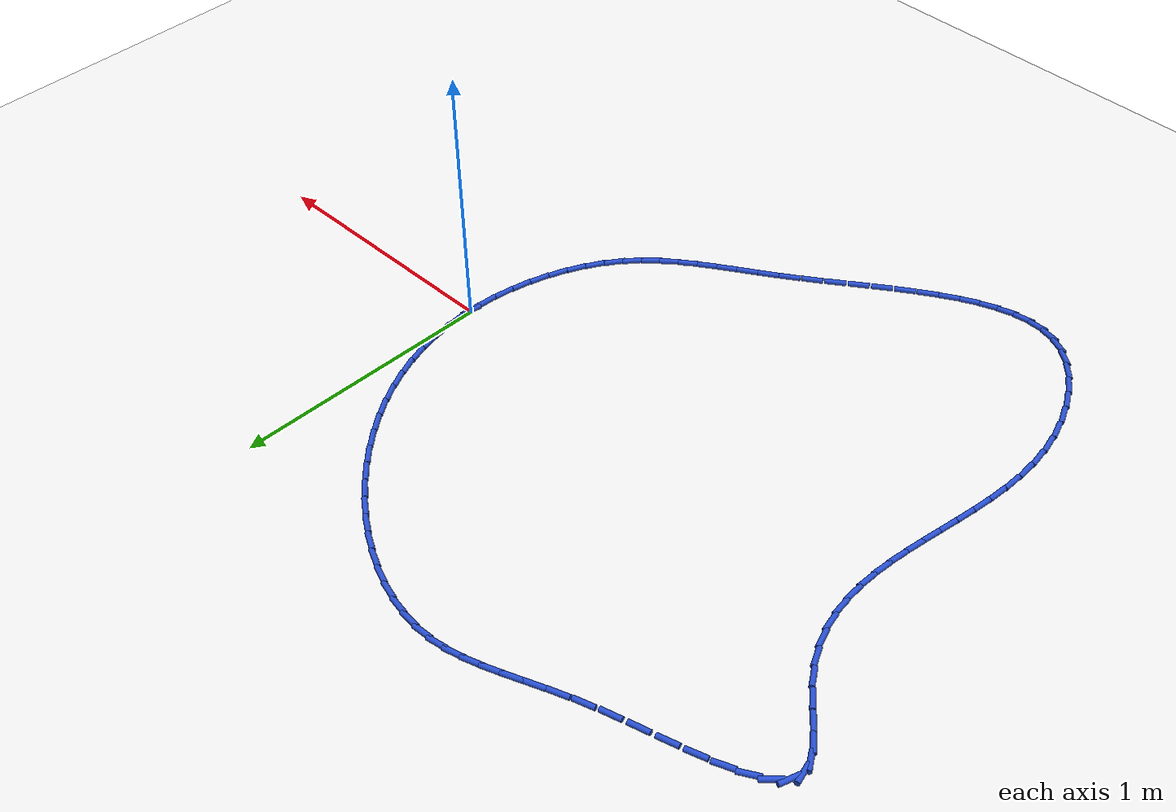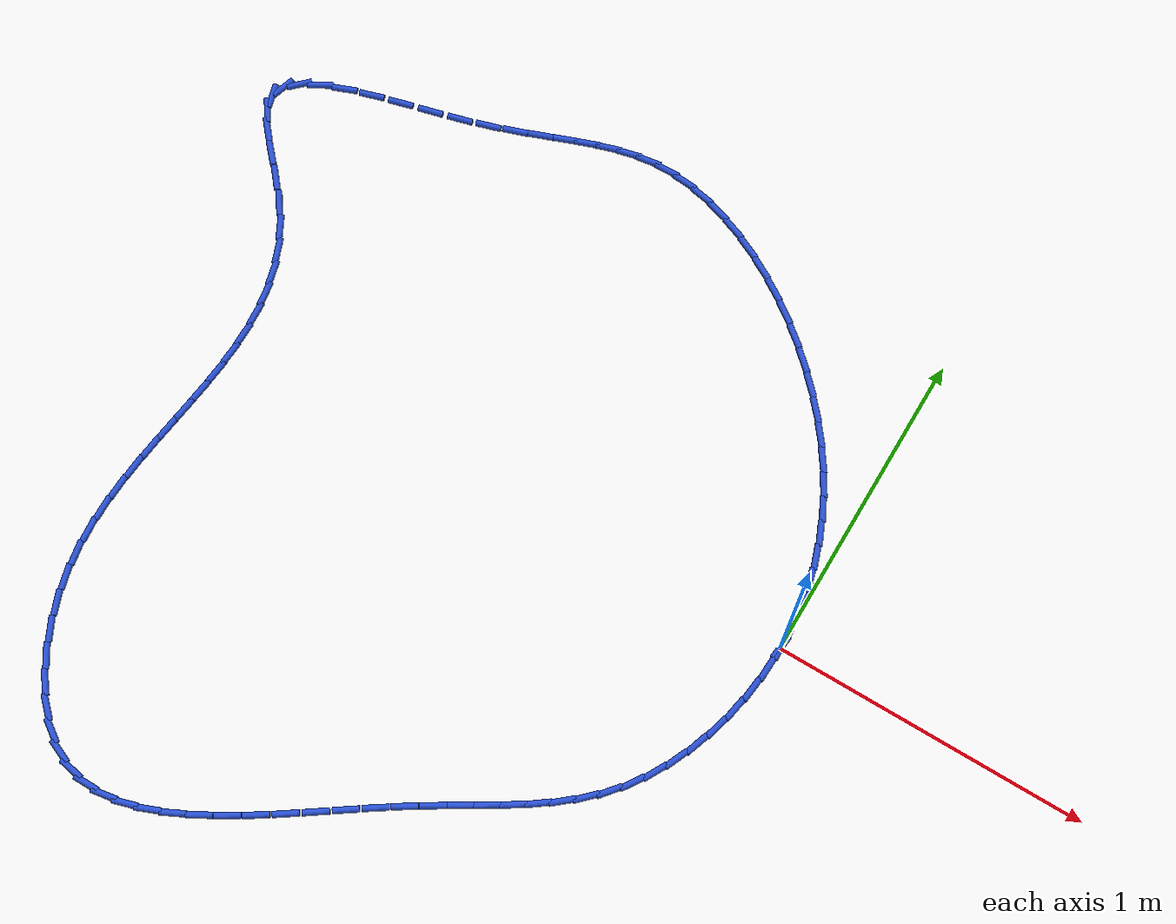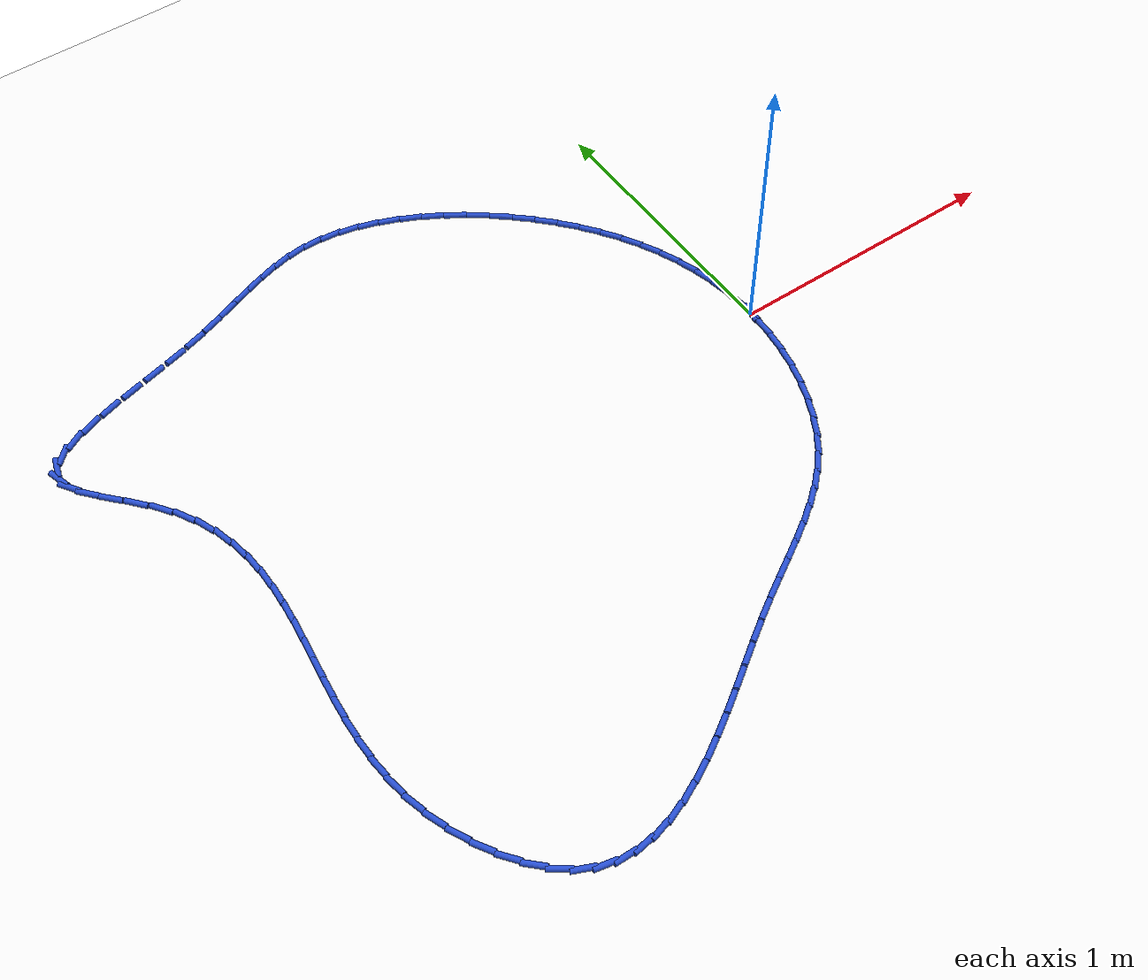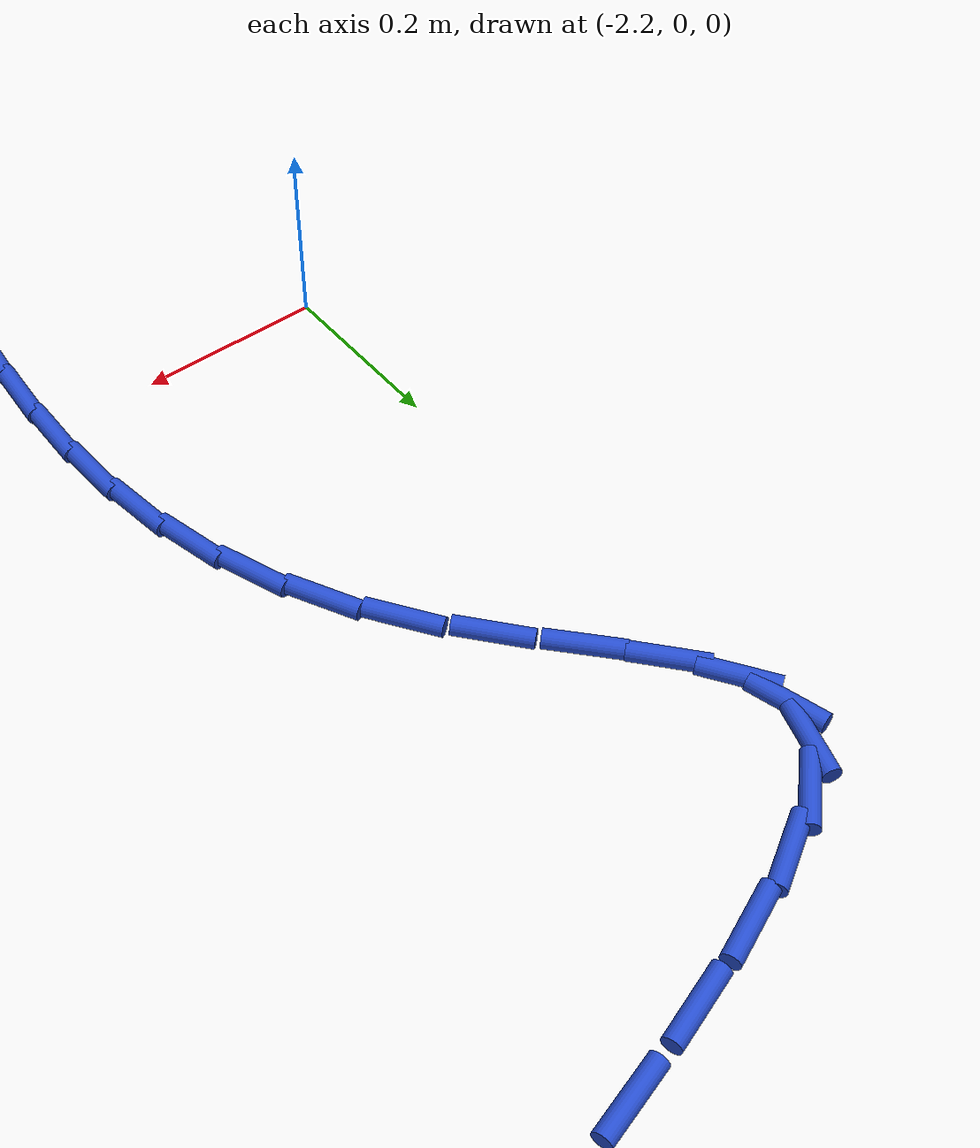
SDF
<sdf version="1.6">
 <world name="default">
  <light name="sun" type="directional">
   <pose>0 0 10 0 -0 0</pose>
   <diffuse>0.8 0.8 0.8 1</diffuse>
   <specular>0.2 0.2 0.2 1</specular>
   <attenuation>
    <range>1000</range>
    <constant>0.9</constant>
    <linear>0.01</linear>
    <quadratic>0.001</quadratic>
   </attenuation>
   <direction>-0.5 0.1 -0.9</direction>
  </light>
  <model name="ground_plane">
   <static>1</static>
   <link name="link">
    <collision name="collision">
     <geometry><plane><normal>0 0 1</normal><size>100 100</size></plane></geometry>
     <surface><friction><ode><mu>100</mu><mu2>50</mu2></ode></friction></surface>
    </collision>
    <visual name="visual">
     <cast_shadows>0</cast_shadows>
     <geometry><plane><normal>0 0 1</normal><size>100 100</size></plane></geometry>
     <material>
      <script><uri>file://media/materials/scripts/gazebo.material</uri><name>Gazebo/WhiteGlow</name></script>
     </material>
    </visual>
   </link>
  </model>
  <gravity>0 0 -9.8</gravity>
  <magnetic_field>6e-06 2.3e-05 -4.2e-05</magnetic_field>
  <atmosphere type="adiabatic"/>
  <physics name="default_physics" default="0" type="ode">
   <max_step_size>0.001</max_step_size>
   <real_time_factor>1</real_time_factor>
   <real_time_update_rate>1000</real_time_update_rate>
  </physics>
  <scene><ambient>0.4 0.4 0.4 1</ambient><background>0.7 0.7 0.7 1</background><shadows>1</shadows></scene>
  <spherical_coordinates>
   <surface_model>EARTH_WGS84</surface_model>
   <latitude_deg>0</latitude_deg>
   <longitude_deg>0</longitude_deg>
   <elevation>0</elevation>
   <heading_deg>0</heading_deg>
  </spherical_coordinates>
  <model name="line">
   <link name="link_0">
    <pose>1.1449174941446927e-16 -1.249000902703301e-16 0.01 0 1.57 -1.5332097352017506</pose>
    <collision name="collision">
     <geometry><cylinder><radius>0.01</radius><length>0.08</length></cylinder></geometry>
    </collision>
    <visual name="visual">
     <material>
      <script><name>Gazebo/Blue</name><uri>file://media/materials/scripts/gazebo.material</uri></script>
     </material>
     <geometry><cylinder><radius>0.01</radius><length>0.08</length></cylinder></geometry>
    </visual>
   </link>
   <link name="link_1">
    <pose>-0.0028008554683580373 0.07448231547981228 0.01 0 1.57 -1.457211328242579</pose>
    <collision name="collision">
     <geometry><cylinder><radius>0.01</radius><length>0.08</length></cylinder></geometry>
    </collision>
    <visual name="visual">
     <material>
      <script><name>Gazebo/Blue</name><uri>file://media/materials/scripts/gazebo.material</uri></script>
     </material>
     <geometry><cylinder><radius>0.01</radius><length>0.08</length></cylinder></geometry>
    </visual>
   </link>
   <link name="link_2">
    <pose>-0.01116715512982944 0.14782201145313623 0.01 0 1.57 -1.3812983999891548</pose>
    <collision name="collision">
     <geometry><cylinder><radius>0.01</radius><length>0.08</length></cylinder></geometry>
    </collision>
    <visual name="visual">
     <material>
      <script><name>Gazebo/Blue</name><uri>file://media/materials/scripts/gazebo.material</uri></script>
     </material>
     <geometry><cylinder><radius>0.01</radius><length>0.08</length></cylinder></geometry>
    </visual>
   </link>
   <link name="link_3">
    <pose>-0.025004623859311938 0.21996759664344118 0.01 0 1.57 -1.3061465344879544</pose>
    <collision name="collision">
     <geometry><cylinder><radius>0.01</radius><length>0.08</length></cylinder></geometry>
    </collision>
    <visual name="visual">
     <material>
      <script><name>Gazebo/Blue</name><uri>file://media/materials/scripts/gazebo.material</uri></script>
     </material>
     <geometry><cylinder><radius>0.01</radius><length>0.08</length></cylinder></geometry>
    </visual>
   </link>
   <link name="link_4">
    <pose>-0.04421898653170336 0.2908675797741967 0.01 0 1.57 -1.2323822463100993</pose>
    <collision name="collision">
     <geometry><cylinder><radius>0.01</radius><length>0.08</length></cylinder></geometry>
    </collision>
    <visual name="visual">
     <material>
      <script><name>Gazebo/Blue</name><uri>file://media/materials/scripts/gazebo.material</uri></script>
     </material>
     <geometry><cylinder><radius>0.01</radius><length>0.08</length></cylinder></geometry>
    </visual>
   </link>
   <link name="link_5">
    <pose>-0.06871596802190158 0.3604704695688723 0.01 0 1.57 -1.1605514381106135</pose>
    <collision name="collision">
     <geometry><cylinder><radius>0.01</radius><length>0.08</length></cylinder></geometry>
    </collision>
    <visual name="visual">
     <material>
      <script><name>Gazebo/Blue</name><uri>file://media/materials/scripts/gazebo.material</uri></script>
     </material>
     <geometry><cylinder><radius>0.01</radius><length>0.08</length></cylinder></geometry>
    </visual>
   </link>
   <link name="link_6">
    <pose>-0.09840129320480442 0.4287247747509374 0.01 0 1.57 -1.0910981484713185</pose>
    <collision name="collision">
     <geometry><cylinder><radius>0.01</radius><length>0.08</length></cylinder></geometry>
    </collision>
    <visual name="visual">
     <material>
      <script><name>Gazebo/Blue</name><uri>file://media/materials/scripts/gazebo.material</uri></script>
     </material>
     <geometry><cylinder><radius>0.01</radius><length>0.08</length></cylinder></geometry>
    </visual>
   </link>
   <link name="link_7">
    <pose>-0.13318068695530982 0.4955790040438619 0.01 0 1.57 -1.0243548441370665</pose>
    <collision name="collision">
     <geometry><cylinder><radius>0.01</radius><length>0.08</length></cylinder></geometry>
    </collision>
    <visual name="visual">
     <material>
      <script><name>Gazebo/Blue</name><uri>file://media/materials/scripts/gazebo.material</uri></script>
     </material>
     <geometry><cylinder><radius>0.01</radius><length>0.08</length></cylinder></geometry>
    </visual>
   </link>
   <link name="link_8">
    <pose>-0.17295987414831548 0.560981666171115 0.01 0 1.57 -0.9605786005803079</pose>
    <collision name="collision">
     <geometry><cylinder><radius>0.01</radius><length>0.08</length></cylinder></geometry>
    </collision>
    <visual name="visual">
     <material>
      <script><name>Gazebo/Blue</name><uri>file://media/materials/scripts/gazebo.material</uri></script>
     </material>
     <geometry><cylinder><radius>0.01</radius><length>0.08</length></cylinder></geometry>
    </visual>
   </link>
   <link name="link_9">
    <pose>-0.21763190158667053 0.6248679371783384 0.01 0 1.57 -0.9001767176270008</pose>
    <collision name="collision">
     <geometry><cylinder><radius>0.01</radius><length>0.08</length></cylinder></geometry>
    </collision>
    <visual name="visual">
     <material>
      <script><name>Gazebo/Blue</name><uri>file://media/materials/scripts/gazebo.material</uri></script>
     </material>
     <geometry><cylinder><radius>0.01</radius><length>0.08</length></cylinder></geometry>
    </visual>
   </link>
   <link name="link_10">
    <pose>-0.26688709217391204 0.6869598019865958 0.01 0 1.57 -0.8425933637744383</pose>
    <collision name="collision">
     <geometry><cylinder><radius>0.01</radius><length>0.08</length></cylinder></geometry>
    </collision>
    <visual name="visual">
     <material>
      <script><name>Gazebo/Blue</name><uri>file://media/materials/scripts/gazebo.material</uri></script>
     </material>
     <geometry><cylinder><radius>0.01</radius><length>0.08</length></cylinder></geometry>
    </visual>
   </link>
   <link name="link_11">
    <pose>-0.3202527710371423 0.7468078316906595 0.01 0 1.57 -0.7867213057191228</pose>
    <collision name="collision">
     <geometry><cylinder><radius>0.01</radius><length>0.08</length></cylinder></geometry>
    </collision>
    <visual name="visual">
     <material>
      <script><name>Gazebo/Blue</name><uri>file://media/materials/scripts/gazebo.material</uri></script>
     </material>
     <geometry><cylinder><radius>0.01</radius><length>0.08</length></cylinder></geometry>
    </visual>
   </link>
   <link name="link_12">
    <pose>-0.377251649127175 0.8039577449656546 0.01 0 1.57 -0.7315112809881077</pose>
    <collision name="collision">
     <geometry><cylinder><radius>0.01</radius><length>0.08</length></cylinder></geometry>
    </collision>
    <visual name="visual">
     <material>
      <script><name>Gazebo/Blue</name><uri>file://media/materials/scripts/gazebo.material</uri></script>
     </material>
     <geometry><cylinder><radius>0.01</radius><length>0.08</length></cylinder></geometry>
    </visual>
   </link>
   <link name="link_13">
    <pose>-0.43740643739482377 0.857955260486706 0.01 0 1.57 -0.6759441761925137</pose>
    <collision name="collision">
     <geometry><cylinder><radius>0.01</radius><length>0.08</length></cylinder></geometry>
    </collision>
    <visual name="visual">
     <material>
      <script><name>Gazebo/Blue</name><uri>file://media/materials/scripts/gazebo.material</uri></script>
     </material>
     <geometry><cylinder><radius>0.01</radius><length>0.08</length></cylinder></geometry>
    </visual>
   </link>
   <link name="link_14">
    <pose>-0.5002398467909022 0.9083460969289389 0.01 0 1.57 -0.6189908107730885</pose>
    <collision name="collision">
     <geometry><cylinder><radius>0.01</radius><length>0.08</length></cylinder></geometry>
    </collision>
    <visual name="visual">
     <material>
      <script><name>Gazebo/Blue</name><uri>file://media/materials/scripts/gazebo.material</uri></script>
     </material>
     <geometry><cylinder><radius>0.01</radius><length>0.08</length></cylinder></geometry>
    </visual>
   </link>
   <link name="link_15">
    <pose>-0.5652745882662236 0.9546759729674777 0.01 0 1.57 -0.559572413776925</pose>
    <collision name="collision">
     <geometry><cylinder><radius>0.01</radius><length>0.08</length></cylinder></geometry>
    </collision>
    <visual name="visual">
     <material>
      <script><name>Gazebo/Blue</name><uri>file://media/materials/scripts/gazebo.material</uri></script>
     </material>
     <geometry><cylinder><radius>0.01</radius><length>0.08</length></cylinder></geometry>
    </visual>
   </link>
   <link name="link_16">
    <pose>-0.6320333727716019 0.9964906072774482 0.01 0 1.57 -0.4965225439888283</pose>
    <collision name="collision">
     <geometry><cylinder><radius>0.01</radius><length>0.08</length></cylinder></geometry>
    </collision>
    <visual name="visual">
     <material>
      <script><name>Gazebo/Blue</name><uri>file://media/materials/scripts/gazebo.material</uri></script>
     </material>
     <geometry><cylinder><radius>0.01</radius><length>0.08</length></cylinder></geometry>
    </visual>
   </link>
   <link name="link_17">
    <pose>-0.7000389112578506 1.033335718533975 0.01 0 1.57 -0.4285531669431859</pose>
    <collision name="collision">
     <geometry><cylinder><radius>0.01</radius><length>0.08</length></cylinder></geometry>
    </collision>
    <visual name="visual">
     <material>
      <script><name>Gazebo/Blue</name><uri>file://media/materials/scripts/gazebo.material</uri></script>
     </material>
     <geometry><cylinder><radius>0.01</radius><length>0.08</length></cylinder></geometry>
    </visual>
   </link>
   <link name="link_18">
    <pose>-0.7688139146757832 1.0647570254121834 0.01 0 1.57 -0.354231734749155</pose>
    <collision name="collision">
     <geometry><cylinder><radius>0.01</radius><length>0.08</length></cylinder></geometry>
    </collision>
    <visual name="visual">
     <material>
      <script><name>Gazebo/Blue</name><uri>file://media/materials/scripts/gazebo.material</uri></script>
     </material>
     <geometry><cylinder><radius>0.01</radius><length>0.08</length></cylinder></geometry>
    </visual>
   </link>
   <link name="link_19">
    <pose>-0.8378810939762137 1.090300246587198 0.01 0 1.57 -0.27198361271759963</pose>
    <collision name="collision">
     <geometry><cylinder><radius>0.01</radius><length>0.08</length></cylinder></geometry>
    </collision>
    <visual name="visual">
     <material>
      <script><name>Gazebo/Blue</name><uri>file://media/materials/scripts/gazebo.material</uri></script>
     </material>
     <geometry><cylinder><radius>0.01</radius><length>0.08</length></cylinder></geometry>
    </visual>
   </link>
   <link name="link_20">
    <pose>-0.9067631601099553 1.1095111007341443 0.01 0 1.57 -0.18014622031427321</pose>
    <collision name="collision">
     <geometry><cylinder><radius>0.01</radius><length>0.08</length></cylinder></geometry>
    </collision>
    <visual name="visual">
     <material>
      <script><name>Gazebo/Blue</name><uri>file://media/materials/scripts/gazebo.material</uri></script>
     </material>
     <geometry><cylinder><radius>0.01</radius><length>0.08</length></cylinder></geometry>
    </visual>
   </link>
   <link name="link_21">
    <pose>-0.9749828240278211 1.1219353065281465 0.01 0 1.57 -0.07711686270004234</pose>
    <collision name="collision">
     <geometry><cylinder><radius>0.01</radius><length>0.08</length></cylinder></geometry>
    </collision>
    <visual name="visual">
     <material>
      <script><name>Gazebo/Blue</name><uri>file://media/materials/scripts/gazebo.material</uri></script>
     </material>
     <geometry><cylinder><radius>0.01</radius><length>0.08</length></cylinder></geometry>
    </visual>
   </link>
   <link name="link_22">
    <pose>-1.042062796680626 1.1271185826443304 0.01 0 1.57 0.03798395442139232</pose>
    <collision name="collision">
     <geometry><cylinder><radius>0.01</radius><length>0.08</length></cylinder></geometry>
    </collision>
    <visual name="visual">
     <material>
      <script><name>Gazebo/Blue</name><uri>file://media/materials/scripts/gazebo.material</uri></script>
     </material>
     <geometry><cylinder><radius>0.01</radius><length>0.08</length></cylinder></geometry>
    </visual>
   </link>
   <link name="link_23">
    <pose>-1.1075482028244734 1.124629991016228 0.01 0 1.57 0.15213571557484942</pose>
    <collision name="collision">
     <geometry><cylinder><radius>0.01</radius><length>0.08</length></cylinder></geometry>
    </collision>
    <visual name="visual">
     <material>
      <script><name>Gazebo/Blue</name><uri>file://media/materials/scripts/gazebo.material</uri></script>
     </material>
     <geometry><cylinder><radius>0.01</radius><length>0.08</length></cylinder></geometry>
    </visual>
   </link>
   <link name="link_24">
    <pose>-1.1717084531378448 1.1147929141056154 0.01 0 1.57 0.2445467233912756</pose>
    <collision name="collision">
     <geometry><cylinder><radius>0.01</radius><length>0.08</length></cylinder></geometry>
    </collision>
    <visual name="visual">
     <material>
      <script><name>Gazebo/Blue</name><uri>file://media/materials/scripts/gazebo.material</uri></script>
     </material>
     <geometry><cylinder><radius>0.01</radius><length>0.08</length></cylinder></geometry>
    </visual>
   </link>
   <link name="link_25">
    <pose>-1.2356766325599284 1.0988302233805285 0.01 0 1.57 0.3100611129486098</pose>
    <collision name="collision">
     <geometry><cylinder><radius>0.01</radius><length>0.08</length></cylinder></geometry>
    </collision>
    <visual name="visual">
     <material>
      <script><name>Gazebo/Blue</name><uri>file://media/materials/scripts/gazebo.material</uri></script>
     </material>
     <geometry><cylinder><radius>0.01</radius><length>0.08</length></cylinder></geometry>
    </visual>
   </link>
   <link name="link_26">
    <pose>-1.3006363885114278 1.0780174495097241 0.01 0 1.57 0.3484368906860273</pose>
    <collision name="collision">
     <geometry><cylinder><radius>0.01</radius><length>0.08</length></cylinder></geometry>
    </collision>
    <visual name="visual">
     <material>
      <script><name>Gazebo/Blue</name><uri>file://media/materials/scripts/gazebo.material</uri></script>
     </material>
     <geometry><cylinder><radius>0.01</radius><length>0.08</length></cylinder></geometry>
    </visual>
   </link>
   <link name="link_27">
    <pose>-1.3677713684130441 1.0536301231619571 0.01 0 1.57 0.36189053698840795</pose>
    <collision name="collision">
     <geometry><cylinder><radius>0.01</radius><length>0.08</length></cylinder></geometry>
    </collision>
    <visual name="visual">
     <material>
      <script><name>Gazebo/Blue</name><uri>file://media/materials/scripts/gazebo.material</uri></script>
     </material>
     <geometry><cylinder><radius>0.01</radius><length>0.08</length></cylinder></geometry>
    </visual>
   </link>
   <link name="link_28">
    <pose>-1.4382652196854806 1.0269437750059842 0.01 0 1.57 0.3537512610958807</pose>
    <collision name="collision">
     <geometry><cylinder><radius>0.01</radius><length>0.08</length></cylinder></geometry>
    </collision>
    <visual name="visual">
     <material>
      <script><name>Gazebo/Blue</name><uri>file://media/materials/scripts/gazebo.material</uri></script>
     </material>
     <geometry><cylinder><radius>0.01</radius><length>0.08</length></cylinder></geometry>
    </visual>
   </link>
   <link name="link_29">
    <pose>-1.5133015897494393 0.9992339357105611 0.01 0 1.57 0.3277222737373112</pose>
    <collision name="collision">
     <geometry><cylinder><radius>0.01</radius><length>0.08</length></cylinder></geometry>
    </collision>
    <visual name="visual">
     <material>
      <script><name>Gazebo/Blue</name><uri>file://media/materials/scripts/gazebo.material</uri></script>
     </material>
     <geometry><cylinder><radius>0.01</radius><length>0.08</length></cylinder></geometry>
    </visual>
   </link>
   <link name="link_30">
    <pose>-1.5940641260256232 0.9717761359444439 0.01 0 1.57 0.28836985248824737</pose>
    <collision name="collision">
     <geometry><cylinder><radius>0.01</radius><length>0.08</length></cylinder></geometry>
    </collision>
    <visual name="visual">
     <material>
      <script><name>Gazebo/Blue</name><uri>file://media/materials/scripts/gazebo.material</uri></script>
     </material>
     <geometry><cylinder><radius>0.01</radius><length>0.08</length></cylinder></geometry>
    </visual>
   </link>
   <link name="link_31">
    <pose>-1.6816308914512108 0.9458004763831561 0.01 0 1.57 0.2563863562605676</pose>
    <collision name="collision">
     <geometry><cylinder><radius>0.01</radius><length>0.08</length></cylinder></geometry>
    </collision>
    <visual name="visual">
     <material>
      <script><name>Gazebo/Blue</name><uri>file://media/materials/scripts/gazebo.material</uri></script>
     </material>
     <geometry><cylinder><radius>0.01</radius><length>0.08</length></cylinder></geometry>
    </visual>
   </link>
   <link name="link_32">
    <pose>-1.7745394486541493 0.9214439528443665 0.01 0 1.57 0.2467275222105835</pose>
    <collision name="collision">
     <geometry><cylinder><radius>0.01</radius><length>0.08</length></cylinder></geometry>
    </collision>
    <visual name="visual">
     <material>
      <script><name>Gazebo/Blue</name><uri>file://media/materials/scripts/gazebo.material</uri></script>
     </material>
     <geometry><cylinder><radius>0.01</radius><length>0.08</length></cylinder></geometry>
    </visual>
   </link>
   <link name="link_33">
    <pose>-1.868723001084497 0.897722979637208 0.01 0 1.57 0.2583544501106272</pose>
    <collision name="collision">
     <geometry><cylinder><radius>0.01</radius><length>0.08</length></cylinder></geometry>
    </collision>
    <visual name="visual">
     <material>
      <script><name>Gazebo/Blue</name><uri>file://media/materials/scripts/gazebo.material</uri></script>
     </material>
     <geometry><cylinder><radius>0.01</radius><length>0.08</length></cylinder></geometry>
    </visual>
   </link>
   <link name="link_34">
    <pose>-1.9599963934674736 0.8736030446857154 0.01 0 1.57 0.2947230313702712</pose>
    <collision name="collision">
     <geometry><cylinder><radius>0.01</radius><length>0.08</length></cylinder></geometry>
    </collision>
    <visual name="visual">
     <material>
      <script><name>Gazebo/Blue</name><uri>file://media/materials/scripts/gazebo.material</uri></script>
     </material>
     <geometry><cylinder><radius>0.01</radius><length>0.08</length></cylinder></geometry>
    </visual>
   </link>
   <link name="link_35">
    <pose>-2.0441744705282976 0.8480496359139232 0.01 0 1.57 0.3669808697708115</pose>
    <collision name="collision">
     <geometry><cylinder><radius>0.01</radius><length>0.08</length></cylinder></geometry>
    </collision>
    <visual name="visual">
     <material>
      <script><name>Gazebo/Blue</name><uri>file://media/materials/scripts/gazebo.material</uri></script>
     </material>
     <geometry><cylinder><radius>0.01</radius><length>0.08</length></cylinder></geometry>
    </visual>
   </link>
   <link name="link_36">
    <pose>-2.117072076992189 0.8200282412458663 0.01 0 1.57 0.5019913108816143</pose>
    <collision name="collision">
     <geometry><cylinder><radius>0.01</radius><length>0.08</length></cylinder></geometry>
    </collision>
    <visual name="visual">
     <material>
      <script><name>Gazebo/Blue</name><uri>file://media/materials/scripts/gazebo.material</uri></script>
     </material>
     <geometry><cylinder><radius>0.01</radius><length>0.08</length></cylinder></geometry>
    </visual>
   </link>
   <link name="link_37">
    <pose>-2.174504057584367 0.7885043486055788 0.01 0 1.57 0.7621054133361269</pose>
    <collision name="collision">
     <geometry><cylinder><radius>0.01</radius><length>0.08</length></cylinder></geometry>
    </collision>
    <visual name="visual">
     <material>
      <script><name>Gazebo/Blue</name><uri>file://media/materials/scripts/gazebo.material</uri></script>
     </material>
     <geometry><cylinder><radius>0.01</radius><length>0.08</length></cylinder></geometry>
    </visual>
   </link>
   <link name="link_38">
    <pose>-2.2122852570300506 0.7524434459170957 0.01 0 1.57 1.2475810619509438</pose>
    <collision name="collision">
     <geometry><cylinder><radius>0.01</radius><length>0.08</length></cylinder></geometry>
    </collision>
    <visual name="visual">
     <material>
      <script><name>Gazebo/Blue</name><uri>file://media/materials/scripts/gazebo.material</uri></script>
     </material>
     <geometry><cylinder><radius>0.01</radius><length>0.08</length></cylinder></geometry>
    </visual>
   </link>
   <link name="link_39">
    <pose>-2.2262305200544596 0.7108110211044518 0.01 0 1.57 -1.302602566285509</pose>
    <collision name="collision">
     <geometry><cylinder><radius>0.01</radius><length>0.08</length></cylinder></geometry>
    </collision>
    <visual name="visual">
     <material>
      <script><name>Gazebo/Blue</name><uri>file://media/materials/scripts/gazebo.material</uri></script>
     </material>
     <geometry><cylinder><radius>0.01</radius><length>0.08</length></cylinder></geometry>
    </visual>
   </link>
   <link name="link_40">
    <pose>-2.213015696955286 0.6627246854505581 0.01 0 1.57 -0.9827869040116004</pose>
    <collision name="collision">
     <geometry><cylinder><radius>0.01</radius><length>0.08</length></cylinder></geometry>
    </collision>
    <visual name="visual">
     <material>
      <script><name>Gazebo/Blue</name><uri>file://media/materials/scripts/gazebo.material</uri></script>
     </material>
     <geometry><cylinder><radius>0.01</radius><length>0.08</length></cylinder></geometry>
    </visual>
   </link>
   <link name="link_41">
    <pose>-2.17696797120944 0.6086538957319201 0.01 0 1.57 -0.8613927856422097</pose>
    <collision name="collision">
     <geometry><cylinder><radius>0.01</radius><length>0.08</length></cylinder></geometry>
    </collision>
    <visual name="visual">
     <material>
      <script><name>Gazebo/Blue</name><uri>file://media/materials/scripts/gazebo.material</uri></script>
     </material>
     <geometry><cylinder><radius>0.01</radius><length>0.08</length></cylinder></geometry>
    </visual>
   </link>
   <link name="link_42">
    <pose>-2.126421877018168 0.5497761316134807 0.01 0 1.57 -0.834247614306104</pose>
    <collision name="collision">
     <geometry><cylinder><radius>0.01</radius><length>0.08</length></cylinder></geometry>
    </collision>
    <visual name="visual">
     <material>
      <script><name>Gazebo/Blue</name><uri>file://media/materials/scripts/gazebo.material</uri></script>
     </material>
     <geometry><cylinder><radius>0.01</radius><length>0.08</length></cylinder></geometry>
    </visual>
   </link>
   <link name="link_43">
    <pose>-2.0697471425699754 0.4872750908704071 0.01 0 1.57 -0.8731889940230607</pose>
    <collision name="collision">
     <geometry><cylinder><radius>0.01</radius><length>0.08</length></cylinder></geometry>
    </collision>
    <visual name="visual">
     <material>
      <script><name>Gazebo/Blue</name><uri>file://media/materials/scripts/gazebo.material</uri></script>
     </material>
     <geometry><cylinder><radius>0.01</radius><length>0.08</length></cylinder></geometry>
    </visual>
   </link>
   <link name="link_44">
    <pose>-2.015313496053362 0.42233447127786655 0.01 0 1.57 -0.9746007358846615</pose>
    <collision name="collision">
     <geometry><cylinder><radius>0.01</radius><length>0.08</length></cylinder></geometry>
    </collision>
    <visual name="visual">
     <material>
      <script><name>Gazebo/Blue</name><uri>file://media/materials/scripts/gazebo.material</uri></script>
     </material>
     <geometry><cylinder><radius>0.01</radius><length>0.08</length></cylinder></geometry>
    </visual>
   </link>
   <link name="link_45">
    <pose>-1.970297983278109 0.35599531395333117 0.01 0 1.57 -1.0962922217057196</pose>
    <collision name="collision">
     <geometry><cylinder><radius>0.01</radius><length>0.08</length></cylinder></geometry>
    </collision>
    <visual name="visual">
     <material>
      <script><name>Gazebo/Blue</name><uri>file://media/materials/scripts/gazebo.material</uri></script>
     </material>
     <geometry><cylinder><radius>0.01</radius><length>0.08</length></cylinder></geometry>
    </visual>
   </link>
   <link name="link_46">
    <pose>-1.9356574122105996 0.2885546577915205 0.01 0 1.57 -1.216545907580361</pose>
    <collision name="collision">
     <geometry><cylinder><radius>0.01</radius><length>0.08</length></cylinder></geometry>
    </collision>
    <visual name="visual">
     <material>
      <script><name>Gazebo/Blue</name><uri>file://media/materials/scripts/gazebo.material</uri></script>
     </material>
     <geometry><cylinder><radius>0.01</radius><length>0.08</length></cylinder></geometry>
    </visual>
   </link>
   <link name="link_47">
    <pose>-1.9103273506375158 0.22006778128758825 0.01 0 1.57 -1.3296743526802286</pose>
    <collision name="collision">
     <geometry><cylinder><radius>0.01</radius><length>0.08</length></cylinder></geometry>
    </collision>
    <visual name="visual">
     <material>
      <script><name>Gazebo/Blue</name><uri>file://media/materials/scripts/gazebo.material</uri></script>
     </material>
     <geometry><cylinder><radius>0.01</radius><length>0.08</length></cylinder></geometry>
    </visual>
   </link>
   <link name="link_48">
    <pose>-1.893242293140577 0.15058983457071617 0.01 0 1.57 -1.4310371951704812</pose>
    <collision name="collision">
     <geometry><cylinder><radius>0.01</radius><length>0.08</length></cylinder></geometry>
    </collision>
    <visual name="visual">
     <material>
      <script><name>Gazebo/Blue</name><uri>file://media/materials/scripts/gazebo.material</uri></script>
     </material>
     <geometry><cylinder><radius>0.01</radius><length>0.08</length></cylinder></geometry>
    </visual>
   </link>
   <link name="link_49">
    <pose>-1.8833367343015044 0.08017596777008514 0.01 0 1.57 -1.5176647410159325</pose>
    <collision name="collision">
     <geometry><cylinder><radius>0.01</radius><length>0.08</length></cylinder></geometry>
    </collision>
    <visual name="visual">
     <material>
      <script><name>Gazebo/Blue</name><uri>file://media/materials/scripts/gazebo.material</uri></script>
     </material>
     <geometry><cylinder><radius>0.01</radius><length>0.08</length></cylinder></geometry>
    </visual>
   </link>
   <link name="link_50">
    <pose>-1.87954516870202 0.00888133101487729 0.01 0 1.57 1.553369946949234</pose>
    <collision name="collision">
     <geometry><cylinder><radius>0.01</radius><length>0.08</length></cylinder></geometry>
    </collision>
    <visual name="visual">
     <material>
      <script><name>Gazebo/Blue</name><uri>file://media/materials/scripts/gazebo.material</uri></script>
     </material>
     <geometry><cylinder><radius>0.01</radius><length>0.08</length></cylinder></geometry>
    </visual>
   </link>
   <link name="link_51">
    <pose>-1.8808020909238443 -0.06323892556572572 0.01 0 1.57 1.4990326527442168</pose>
    <collision name="collision">
     <geometry><cylinder><radius>0.01</radius><length>0.08</length></cylinder></geometry>
    </collision>
    <visual name="visual">
     <material>
      <script><name>Gazebo/Blue</name><uri>file://media/materials/scripts/gazebo.material</uri></script>
     </material>
     <geometry><cylinder><radius>0.01</radius><length>0.08</length></cylinder></geometry>
    </visual>
   </link>
   <link name="link_52">
    <pose>-1.8860419955486984 -0.13612965184254217 0.01 0 1.57 1.4604218494587642</pose>
    <collision name="collision">
     <geometry><cylinder><radius>0.01</radius><length>0.08</length></cylinder></geometry>
    </collision>
    <visual name="visual">
     <material>
      <script><name>Gazebo/Blue</name><uri>file://media/materials/scripts/gazebo.material</uri></script>
     </material>
     <geometry><cylinder><radius>0.01</radius><length>0.08</length></cylinder></geometry>
    </visual>
   </link>
   <link name="link_53">
    <pose>-1.8941993771583043 -0.20973569768639053 0.01 0 1.57 1.4368269381689607</pose>
    <collision name="collision">
     <geometry><cylinder><radius>0.01</radius><length>0.08</length></cylinder></geometry>
    </collision>
    <visual name="visual">
     <material>
      <script><name>Gazebo/Blue</name><uri>file://media/materials/scripts/gazebo.material</uri></script>
     </material>
     <geometry><cylinder><radius>0.01</radius><length>0.08</length></cylinder></geometry>
    </visual>
   </link>
   <link name="link_54">
    <pose>-1.9042087303343813 -0.28400191296808885 0.01 0 1.57 1.4275915370557075</pose>
    <collision name="collision">
     <geometry><cylinder><radius>0.01</radius><length>0.08</length></cylinder></geometry>
    </collision>
    <visual name="visual">
     <material>
      <script><name>Gazebo/Blue</name><uri>file://media/materials/scripts/gazebo.material</uri></script>
     </material>
     <geometry><cylinder><radius>0.01</radius><length>0.08</length></cylinder></geometry>
    </visual>
   </link>
   <link name="link_55">
    <pose>-1.9150045496586527 -0.358873147558456 0.01 0 1.57 1.4322488646401648</pose>
    <collision name="collision">
     <geometry><cylinder><radius>0.01</radius><length>0.08</length></cylinder></geometry>
    </collision>
    <visual name="visual">
     <material>
      <script><name>Gazebo/Blue</name><uri>file://media/materials/scripts/gazebo.material</uri></script>
     </material>
     <geometry><cylinder><radius>0.01</radius><length>0.08</length></cylinder></geometry>
    </visual>
   </link>
   <link name="link_56">
    <pose>-1.9255213297128373 -0.4342942513283098 0.01 0 1.57 1.4505580077111497</pose>
    <collision name="collision">
     <geometry><cylinder><radius>0.01</radius><length>0.08</length></cylinder></geometry>
    </collision>
    <visual name="visual">
     <material>
      <script><name>Gazebo/Blue</name><uri>file://media/materials/scripts/gazebo.material</uri></script>
     </material>
     <geometry><cylinder><radius>0.01</radius><length>0.08</length></cylinder></geometry>
    </visual>
   </link>
   <link name="link_57">
    <pose>-1.9346935650786583 -0.5102100741484688 0.01 0 1.57 1.482464792846805</pose>
    <collision name="collision">
     <geometry><cylinder><radius>0.01</radius><length>0.08</length></cylinder></geometry>
    </collision>
    <visual name="visual">
     <material>
      <script><name>Gazebo/Blue</name><uri>file://media/materials/scripts/gazebo.material</uri></script>
     </material>
     <geometry><cylinder><radius>0.01</radius><length>0.08</length></cylinder></geometry>
    </visual>
   </link>
   <link name="link_58">
    <pose>-1.9414557503378354 -0.5865654658897506 0.01 0 1.57 1.5279942607933097</pose>
    <collision name="collision">
     <geometry><cylinder><radius>0.01</radius><length>0.08</length></cylinder></geometry>
    </collision>
    <visual name="visual">
     <material>
      <script><name>Gazebo/Blue</name><uri>file://media/materials/scripts/gazebo.material</uri></script>
     </material>
     <geometry><cylinder><radius>0.01</radius><length>0.08</length></cylinder></geometry>
    </visual>
   </link>
   <link name="link_59">
    <pose>-1.9447423800720895 -0.6633052764229748 0.01 0 1.57 -1.5545210519343264</pose>
    <collision name="collision">
     <geometry><cylinder><radius>0.01</radius><length>0.08</length></cylinder></geometry>
    </collision>
    <visual name="visual">
     <material>
      <script><name>Gazebo/Blue</name><uri>file://media/materials/scripts/gazebo.material</uri></script>
     </material>
     <geometry><cylinder><radius>0.01</radius><length>0.08</length></cylinder></geometry>
    </visual>
   </link>
   <link name="link_60">
    <pose>-1.9434879488631434 -0.7403743556189595 0.01 0 1.57 -1.4823194415950747</pose>
    <collision name="collision">
     <geometry><cylinder><radius>0.01</radius><length>0.08</length></cylinder></geometry>
    </collision>
    <visual name="visual">
     <material>
      <script><name>Gazebo/Blue</name><uri>file://media/materials/scripts/gazebo.material</uri></script>
     </material>
     <geometry><cylinder><radius>0.01</radius><length>0.08</length></cylinder></geometry>
    </visual>
   </link>
   <link name="link_61">
    <pose>-1.9366269512927166 -0.8177175533485226 0.01 0 1.57 -1.39805497025435</pose>
    <collision name="collision">
     <geometry><cylinder><radius>0.01</radius><length>0.08</length></cylinder></geometry>
    </collision>
    <visual name="visual">
     <material>
      <script><name>Gazebo/Blue</name><uri>file://media/materials/scripts/gazebo.material</uri></script>
     </material>
     <geometry><cylinder><radius>0.01</radius><length>0.08</length></cylinder></geometry>
    </visual>
   </link>
   <link name="link_62">
    <pose>-1.9230938819425312 -0.8952797194824826 0.01 0 1.57 -1.3054544449427778</pose>
    <collision name="collision">
     <geometry><cylinder><radius>0.01</radius><length>0.08</length></cylinder></geometry>
    </collision>
    <visual name="visual">
     <material>
      <script><name>Gazebo/Blue</name><uri>file://media/materials/scripts/gazebo.material</uri></script>
     </material>
     <geometry><cylinder><radius>0.01</radius><length>0.08</length></cylinder></geometry>
    </visual>
   </link>
   <link name="link_63">
    <pose>-1.9020344920114367 -0.9727752745814496 0.01 0 1.57 -1.2139622620561807</pose>
    <collision name="collision">
     <geometry><cylinder><radius>0.01</radius><length>0.08</length></cylinder></geometry>
    </collision>
    <visual name="visual">
     <material>
      <script><name>Gazebo/Blue</name><uri>file://media/materials/scripts/gazebo.material</uri></script>
     </material>
     <geometry><cylinder><radius>0.01</radius><length>0.08</length></cylinder></geometry>
    </visual>
   </link>
   <link name="link_64">
    <pose>-1.8737430137951876 -1.0486659271701044 0.01 0 1.57 -1.1218669783725665</pose>
    <collision name="collision">
     <geometry><cylinder><radius>0.01</radius><length>0.08</length></cylinder></geometry>
    </collision>
    <visual name="visual">
     <material>
      <script><name>Gazebo/Blue</name><uri>file://media/materials/scripts/gazebo.material</uri></script>
     </material>
     <geometry><cylinder><radius>0.01</radius><length>0.08</length></cylinder></geometry>
    </visual>
   </link>
   <link name="link_65">
    <pose>-1.8389020893114834 -1.1209897257452326 0.01 0 1.57 -1.0234636149266603</pose>
    <collision name="collision">
     <geometry><cylinder><radius>0.01</radius><length>0.08</length></cylinder></geometry>
    </collision>
    <visual name="visual">
     <material>
      <script><name>Gazebo/Blue</name><uri>file://media/materials/scripts/gazebo.material</uri></script>
     </material>
     <geometry><cylinder><radius>0.01</radius><length>0.08</length></cylinder></geometry>
    </visual>
   </link>
   <link name="link_66">
    <pose>-1.7981946668334303 -1.1877843847538596 0.01 0 1.57 -0.912213938143939</pose>
    <collision name="collision">
     <geometry><cylinder><radius>0.01</radius><length>0.08</length></cylinder></geometry>
    </collision>
    <visual name="visual">
     <material>
      <script><name>Gazebo/Blue</name><uri>file://media/materials/scripts/gazebo.material</uri></script>
     </material>
     <geometry><cylinder><radius>0.01</radius><length>0.08</length></cylinder></geometry>
    </visual>
   </link>
   <link name="link_67">
    <pose>-1.7523036946341355 -1.2470876186430109 0.01 0 1.57 -0.7799907490288188</pose>
    <collision name="collision">
     <geometry><cylinder><radius>0.01</radius><length>0.08</length></cylinder></geometry>
    </collision>
    <visual name="visual">
     <material>
      <script><name>Gazebo/Blue</name><uri>file://media/materials/scripts/gazebo.material</uri></script>
     </material>
     <geometry><cylinder><radius>0.01</radius><length>0.08</length></cylinder></geometry>
    </visual>
   </link>
   <link name="link_68">
    <pose>-1.701912120986705 -1.2969371418597124 0.01 0 1.57 -0.6167307255075669</pose>
    <collision name="collision">
     <geometry><cylinder><radius>0.01</radius><length>0.08</length></cylinder></geometry>
    </collision>
    <visual name="visual">
     <material>
      <script><name>Gazebo/Blue</name><uri>file://media/materials/scripts/gazebo.material</uri></script>
     </material>
     <geometry><cylinder><radius>0.01</radius><length>0.08</length></cylinder></geometry>
    </visual>
   </link>
   <link name="link_69">
    <pose>-1.647702894164245 -1.3353706688509894 0.01 0 1.57 -0.41466661530499477</pose>
    <collision name="collision">
     <geometry><cylinder><radius>0.01</radius><length>0.08</length></cylinder></geometry>
    </collision>
    <visual name="visual">
     <material>
      <script><name>Gazebo/Blue</name><uri>file://media/materials/scripts/gazebo.material</uri></script>
     </material>
     <geometry><cylinder><radius>0.01</radius><length>0.08</length></cylinder></geometry>
    </visual>
   </link>
   <link name="link_70">
    <pose>-1.5903349852337116 -1.3606234876891328 0.01 0 1.57 -0.20074087409055189</pose>
    <collision name="collision">
     <geometry><cylinder><radius>0.01</radius><length>0.08</length></cylinder></geometry>
    </collision>
    <visual name="visual">
     <material>
      <script><name>Gazebo/Blue</name><uri>file://media/materials/scripts/gazebo.material</uri></script>
     </material>
     <geometry><cylinder><radius>0.01</radius><length>0.08</length></cylinder></geometry>
    </visual>
   </link>
   <link name="link_71">
    <pose>-1.5302341127127788 -1.3728529015250344 0.01 0 1.57 -0.0071286408551877916</pose>
    <collision name="collision">
     <geometry><cylinder><radius>0.01</radius><length>0.08</length></cylinder></geometry>
    </collision>
    <visual name="visual">
     <material>
      <script><name>Gazebo/Blue</name><uri>file://media/materials/scripts/gazebo.material</uri></script>
     </material>
     <geometry><cylinder><radius>0.01</radius><length>0.08</length></cylinder></geometry>
    </visual>
   </link>
   <link name="link_72">
    <pose>-1.4676946226427212 -1.3732987306410127 0.01 0 1.57 0.1546759387437639</pose>
    <collision name="collision">
     <geometry><cylinder><radius>0.01</radius><length>0.08</length></cylinder></geometry>
    </collision>
    <visual name="visual">
     <material>
      <script><name>Gazebo/Blue</name><uri>file://media/materials/scripts/gazebo.material</uri></script>
     </material>
     <geometry><cylinder><radius>0.01</radius><length>0.08</length></cylinder></geometry>
    </visual>
   </link>
   <link name="link_73">
    <pose>-1.4030093896612992 -1.363212919773127 0.01 0 1.57 0.2832200385504473</pose>
    <collision name="collision">
     <geometry><cylinder><radius>0.01</radius><length>0.08</length></cylinder></geometry>
    </collision>
    <visual name="visual">
     <material>
      <script><name>Gazebo/Blue</name><uri>file://media/materials/scripts/gazebo.material</uri></script>
     </material>
     <geometry><cylinder><radius>0.01</radius><length>0.08</length></cylinder></geometry>
    </visual>
   </link>
   <link name="link_74">
    <pose>-1.3364712884062735 -1.3438474136574357 0.01 0 1.57 0.38245461190737556</pose>
    <collision name="collision">
     <geometry><cylinder><radius>0.01</radius><length>0.08</length></cylinder></geometry>
    </collision>
    <visual name="visual">
     <material>
      <script><name>Gazebo/Blue</name><uri>file://media/materials/scripts/gazebo.material</uri></script>
     </material>
     <geometry><cylinder><radius>0.01</radius><length>0.08</length></cylinder></geometry>
    </visual>
   </link>
   <link name="link_75">
    <pose>-1.2683731935154043 -1.3164541570299981 0.01 0 1.57 0.4577072965075397</pose>
    <collision name="collision">
     <geometry><cylinder><radius>0.01</radius><length>0.08</length></cylinder></geometry>
    </collision>
    <visual name="visual">
     <material>
      <script><name>Gazebo/Blue</name><uri>file://media/materials/scripts/gazebo.material</uri></script>
     </material>
     <geometry><cylinder><radius>0.01</radius><length>0.08</length></cylinder></geometry>
    </visual>
   </link>
   <link name="link_76">
    <pose>-1.1990079796264526 -1.282285094626873 0.01 0 1.57 0.5137597266537347</pose>
    <collision name="collision">
     <geometry><cylinder><radius>0.01</radius><length>0.08</length></cylinder></geometry>
    </collision>
    <visual name="visual">
     <material>
      <script><name>Gazebo/Blue</name><uri>file://media/materials/scripts/gazebo.material</uri></script>
     </material>
     <geometry><cylinder><radius>0.01</radius><length>0.08</length></cylinder></geometry>
    </visual>
   </link>
   <link name="link_77">
    <pose>-1.1286685213771783 -1.24259217118412 0.01 0 1.57 0.554303071069097</pose>
    <collision name="collision">
     <geometry><cylinder><radius>0.01</radius><length>0.08</length></cylinder></geometry>
    </collision>
    <visual name="visual">
     <material>
      <script><name>Gazebo/Blue</name><uri>file://media/materials/scripts/gazebo.material</uri></script>
     </material>
     <geometry><cylinder><radius>0.01</radius><length>0.08</length></cylinder></geometry>
    </visual>
   </link>
   <link name="link_78">
    <pose>-1.0576476934053425 -1.1986273314377975 0.01 0 1.57 0.581953920863806</pose>
    <collision name="collision">
     <geometry><cylinder><radius>0.01</radius><length>0.08</length></cylinder></geometry>
    </collision>
    <visual name="visual">
     <material>
      <script><name>Gazebo/Blue</name><uri>file://media/materials/scripts/gazebo.material</uri></script>
     </material>
     <geometry><cylinder><radius>0.01</radius><length>0.08</length></cylinder></geometry>
    </visual>
   </link>
   <link name="link_79">
    <pose>-0.9862383703487048 -1.1516425201239646 0.01 0 1.57 0.5984138104407891</pose>
    <collision name="collision">
     <geometry><cylinder><radius>0.01</radius><length>0.08</length></cylinder></geometry>
    </collision>
    <visual name="visual">
     <material>
      <script><name>Gazebo/Blue</name><uri>file://media/materials/scripts/gazebo.material</uri></script>
     </material>
     <geometry><cylinder><radius>0.01</radius><length>0.08</length></cylinder></geometry>
    </visual>
   </link>
   <link name="link_80">
    <pose>-0.914733426845026 -1.102889681978681 0.01 0 1.57 0.6046155761022319</pose>
    <collision name="collision">
     <geometry><cylinder><radius>0.01</radius><length>0.08</length></cylinder></geometry>
    </collision>
    <visual name="visual">
     <material>
      <script><name>Gazebo/Blue</name><uri>file://media/materials/scripts/gazebo.material</uri></script>
     </material>
     <geometry><cylinder><radius>0.01</radius><length>0.08</length></cylinder></geometry>
    </visual>
   </link>
   <link name="link_81">
    <pose>-0.8434257375320666 -1.053620761738005 0.01 0 1.57 0.6008090474968232</pose>
    <collision name="collision">
     <geometry><cylinder><radius>0.01</radius><length>0.08</length></cylinder></geometry>
    </collision>
    <visual name="visual">
     <material>
      <script><name>Gazebo/Blue</name><uri>file://media/materials/scripts/gazebo.material</uri></script>
     </material>
     <geometry><cylinder><radius>0.01</radius><length>0.08</length></cylinder></geometry>
    </visual>
   </link>
   <link name="link_82">
    <pose>-0.7726081770475869 -1.0050877041379955 0.01 0 1.57 0.5865732783419829</pose>
    <collision name="collision">
     <geometry><cylinder><radius>0.01</radius><length>0.08</length></cylinder></geometry>
    </collision>
    <visual name="visual">
     <material>
      <script><name>Gazebo/Blue</name><uri>file://media/materials/scripts/gazebo.material</uri></script>
     </material>
     <geometry><cylinder><radius>0.01</radius><length>0.08</length></cylinder></geometry>
    </visual>
   </link>
   <link name="link_83">
    <pose>-0.7025736200293473 -0.9585424539147123 0.01 0 1.57 0.5632055641519607</pose>
    <collision name="collision">
     <geometry><cylinder><radius>0.01</radius><length>0.08</length></cylinder></geometry>
    </collision>
    <visual name="visual">
     <material>
      <script><name>Gazebo/Blue</name><uri>file://media/materials/scripts/gazebo.material</uri></script>
     </material>
     <geometry><cylinder><radius>0.01</radius><length>0.08</length></cylinder></geometry>
    </visual>
   </link>
   <link name="link_84">
    <pose>-0.6336293409984354 -0.915009374262132 0.01 0 1.57 0.5462850240648011</pose>
    <collision name="collision">
     <geometry><cylinder><radius>0.01</radius><length>0.08</length></cylinder></geometry>
    </collision>
    <visual name="visual">
     <material>
      <script><name>Gazebo/Blue</name><uri>file://media/materials/scripts/gazebo.material</uri></script>
     </material>
     <geometry><cylinder><radius>0.01</radius><length>0.08</length></cylinder></geometry>
    </visual>
   </link>
   <link name="link_85">
    <pose>-0.5661784095082972 -0.8739988451915468 0.01 0 1.57 0.5436270300245718</pose>
    <collision name="collision">
     <geometry><cylinder><radius>0.01</radius><length>0.08</length></cylinder></geometry>
    </collision>
    <visual name="visual">
     <material>
      <script><name>Gazebo/Blue</name><uri>file://media/materials/scripts/gazebo.material</uri></script>
     </material>
     <geometry><cylinder><radius>0.01</radius><length>0.08</length></cylinder></geometry>
    </visual>
   </link>
   <link name="link_86">
    <pose>-0.5006629978000551 -0.8344032521264725 0.01 0 1.57 0.5566504741889258</pose>
    <collision name="collision">
     <geometry><cylinder><radius>0.01</radius><length>0.08</length></cylinder></geometry>
    </collision>
    <visual name="visual">
     <material>
      <script><name>Gazebo/Blue</name><uri>file://media/materials/scripts/gazebo.material</uri></script>
     </material>
     <geometry><cylinder><radius>0.01</radius><length>0.08</length></cylinder></geometry>
    </visual>
   </link>
   <link name="link_87">
    <pose>-0.43752539384859745 -0.7951131513874641 0.01 0 1.57 0.5866513777761613</pose>
    <collision name="collision">
     <geometry><cylinder><radius>0.01</radius><length>0.08</length></cylinder></geometry>
    </collision>
    <visual name="visual">
     <material>
      <script><name>Gazebo/Blue</name><uri>file://media/materials/scripts/gazebo.material</uri></script>
     </material>
     <geometry><cylinder><radius>0.01</radius><length>0.08</length></cylinder></geometry>
    </visual>
   </link>
   <link name="link_88">
    <pose>-0.3772078856288125 -0.7550190992950766 0.01 0 1.57 0.6346498271203561</pose>
    <collision name="collision">
     <geometry><cylinder><radius>0.01</radius><length>0.08</length></cylinder></geometry>
    </collision>
    <visual name="visual">
     <material>
      <script><name>Gazebo/Blue</name><uri>file://media/materials/scripts/gazebo.material</uri></script>
     </material>
     <geometry><cylinder><radius>0.01</radius><length>0.08</length></cylinder></geometry>
    </visual>
   </link>
   <link name="link_89">
    <pose>-0.32015276111558905 -0.7130116521698656 0.01 0 1.57 0.7010278306524079</pose>
    <collision name="collision">
     <geometry><cylinder><radius>0.01</radius><length>0.08</length></cylinder></geometry>
    </collision>
    <visual name="visual">
     <material>
      <script><name>Gazebo/Blue</name><uri>file://media/materials/scripts/gazebo.material</uri></script>
     </material>
     <geometry><cylinder><radius>0.01</radius><length>0.08</length></cylinder></geometry>
    </visual>
   </link>
   <link name="link_90">
    <pose>-0.2668023082838153 -0.6679813663323858 0.01 0 1.57 0.7849821159996317</pose>
    <collision name="collision">
     <geometry><cylinder><radius>0.01</radius><length>0.08</length></cylinder></geometry>
    </collision>
    <visual name="visual">
     <material>
      <script><name>Gazebo/Blue</name><uri>file://media/materials/scripts/gazebo.material</uri></script>
     </material>
     <geometry><cylinder><radius>0.01</radius><length>0.08</length></cylinder></geometry>
    </visual>
   </link>
   <link name="link_91">
    <pose>-0.21759881510837983 -0.6188187981031925 0.01 0 1.57 0.8836924012514156</pose>
    <collision name="collision">
     <geometry><cylinder><radius>0.01</radius><length>0.08</length></cylinder></geometry>
    </collision>
    <visual name="visual">
     <material>
      <script><name>Gazebo/Blue</name><uri>file://media/materials/scripts/gazebo.material</uri></script>
     </material>
     <geometry><cylinder><radius>0.01</radius><length>0.08</length></cylinder></geometry>
    </visual>
   </link>
   <link name="link_92">
    <pose>-0.17298040417160637 -0.5644378603098806 0.01 0 1.57 0.9846989537067747</pose>
    <collision name="collision">
     <geometry><cylinder><radius>0.01</radius><length>0.08</length></cylinder></geometry>
    </collision>
    <visual name="visual">
     <material>
      <script><name>Gazebo/Blue</name><uri>file://media/materials/scripts/gazebo.material</uri></script>
     </material>
     <geometry><cylinder><radius>0.01</radius><length>0.08</length></cylinder></geometry>
    </visual>
   </link>
   <link name="link_93">
    <pose>-0.13323805375886325 -0.5045775445101609 0.01 0 1.57 1.077006050943508</pose>
    <collision name="collision">
     <geometry><cylinder><radius>0.01</radius><length>0.08</length></cylinder></geometry>
    </collision>
    <visual name="visual">
     <material>
      <script><name>Gazebo/Blue</name><uri>file://media/materials/scripts/gazebo.material</uri></script>
     </material>
     <geometry><cylinder><radius>0.01</radius><length>0.08</length></cylinder></geometry>
    </visual>
   </link>
   <link name="link_94">
    <pose>-0.09847973557535088 -0.44000301072285175 0.01 0 1.57 1.1617407842913356</pose>
    <collision name="collision">
     <geometry><cylinder><radius>0.01</radius><length>0.08</length></cylinder></geometry>
    </collision>
    <visual name="visual">
     <material>
      <script><name>Gazebo/Blue</name><uri>file://media/materials/scripts/gazebo.material</uri></script>
     </material>
     <geometry><cylinder><radius>0.01</radius><length>0.08</length></cylinder></geometry>
    </visual>
   </link>
   <link name="link_95">
    <pose>-0.06880197634806709 -0.37154359412188853 0.01 0 1.57 1.2407335051686208</pose>
    <collision name="collision">
     <geometry><cylinder><radius>0.01</radius><length>0.08</length></cylinder></geometry>
    </collision>
    <visual name="visual">
     <material>
      <script><name>Gazebo/Blue</name><uri>file://media/materials/scripts/gazebo.material</uri></script>
     </material>
     <geometry><cylinder><radius>0.01</radius><length>0.08</length></cylinder></geometry>
    </visual>
   </link>
   <link name="link_96">
    <pose>-0.04430130280400991 -0.3000286298812074 0.01 0 1.57 1.3157379579195885</pose>
    <collision name="collision">
     <geometry><cylinder><radius>0.01</radius><length>0.08</length></cylinder></geometry>
    </collision>
    <visual name="visual">
     <material>
      <script><name>Gazebo/Blue</name><uri>file://media/materials/scripts/gazebo.material</uri></script>
     </material>
     <geometry><cylinder><radius>0.01</radius><length>0.08</length></cylinder></geometry>
    </visual>
   </link>
   <link name="link_97">
    <pose>-0.025074241670176613 -0.2262874531747423 0.01 0 1.57 1.3884259131854457</pose>
    <collision name="collision">
     <geometry><cylinder><radius>0.01</radius><length>0.08</length></cylinder></geometry>
    </collision>
    <visual name="visual">
     <material>
      <script><name>Gazebo/Blue</name><uri>file://media/materials/scripts/gazebo.material</uri></script>
     </material>
     <geometry><cylinder><radius>0.01</radius><length>0.08</length></cylinder></geometry>
    </visual>
   </link>
   <link name="link_98">
    <pose>-0.011217319673565327 -0.1511493991764291 0.01 0 1.57 1.4604193427329055</pose>
    <collision name="collision">
     <geometry><cylinder><radius>0.01</radius><length>0.08</length></cylinder></geometry>
    </collision>
    <visual name="visual">
     <material>
      <script><name>Gazebo/Blue</name><uri>file://media/materials/scripts/gazebo.material</uri></script>
     </material>
     <geometry><cylinder><radius>0.01</radius><length>0.08</length></cylinder></geometry>
    </visual>
   </link>
   <link name="link_99">
    <pose>-0.002827063541173812 -0.07544380306020333 0.01 0 1.57 1.533341409343384</pose>
    <collision name="collision">
     <geometry><cylinder><radius>0.01</radius><length>0.08</length></cylinder></geometry>
    </collision>
    <visual name="visual">
     <material>
      <script><name>Gazebo/Blue</name><uri>file://media/materials/scripts/gazebo.material</uri></script>
     </material>
     <geometry><cylinder><radius>0.01</radius><length>0.08</length></cylinder></geometry>
    </visual>
   </link>
   <link name="link_100">
    <pose>1.0408340855860843e-16 -2.0816681711721685e-16 0.01 0 1.57 1.446441332248135</pose>
    <collision name="collision">
     <geometry><cylinder><radius>0.01</radius><length>0.08</length></cylinder></geometry>
    </collision>
    <visual name="visual">
     <material>
      <script><name>Gazebo/Blue</name><uri>file://media/materials/scripts/gazebo.material</uri></script>
     </material>
     <geometry><cylinder><radius>0.01</radius><length>0.08</length></cylinder></geometry>
    </visual>
   </link>
  </model>
 </world>
</sdf>
